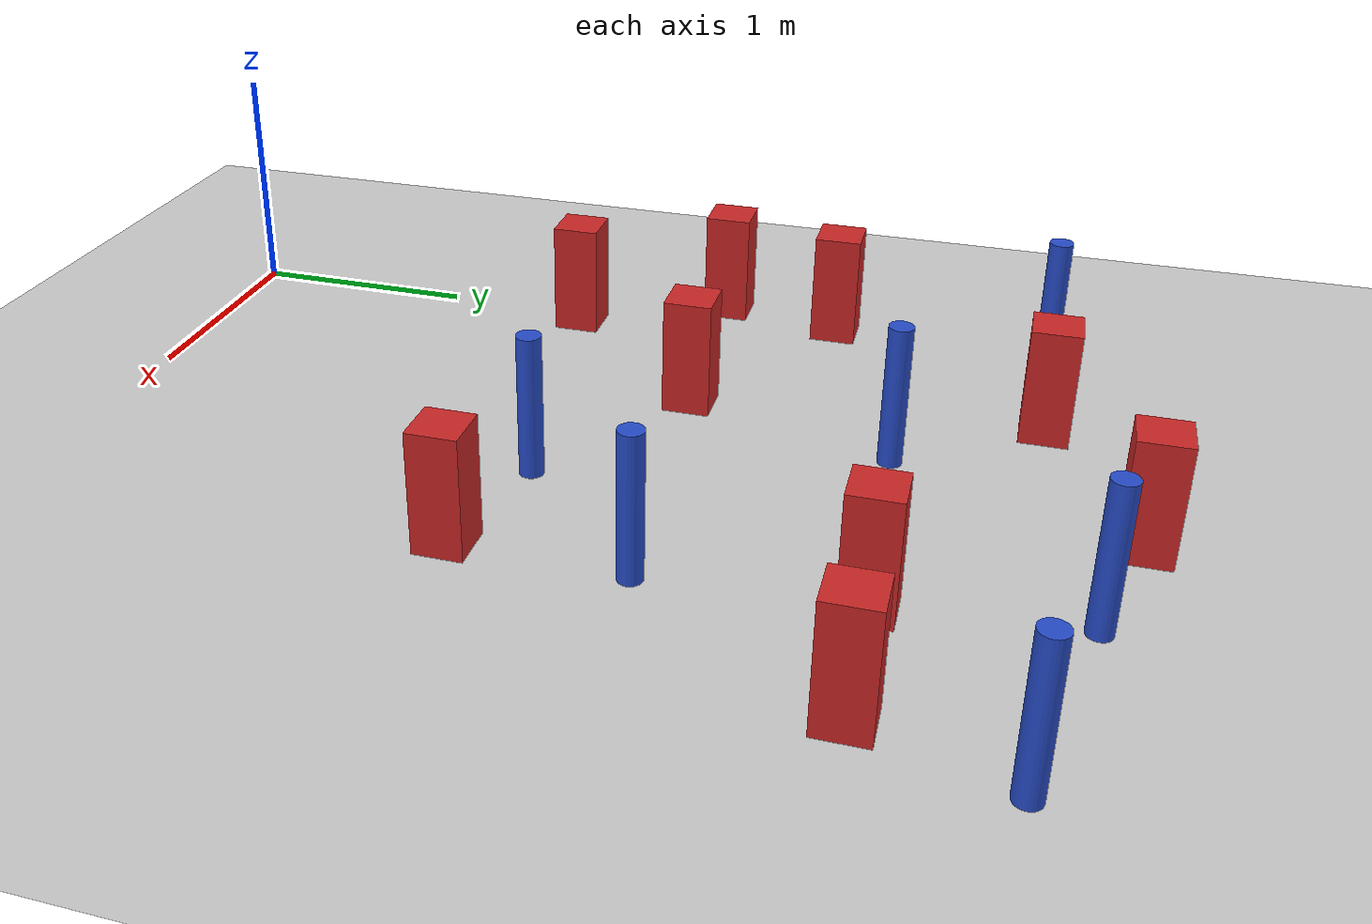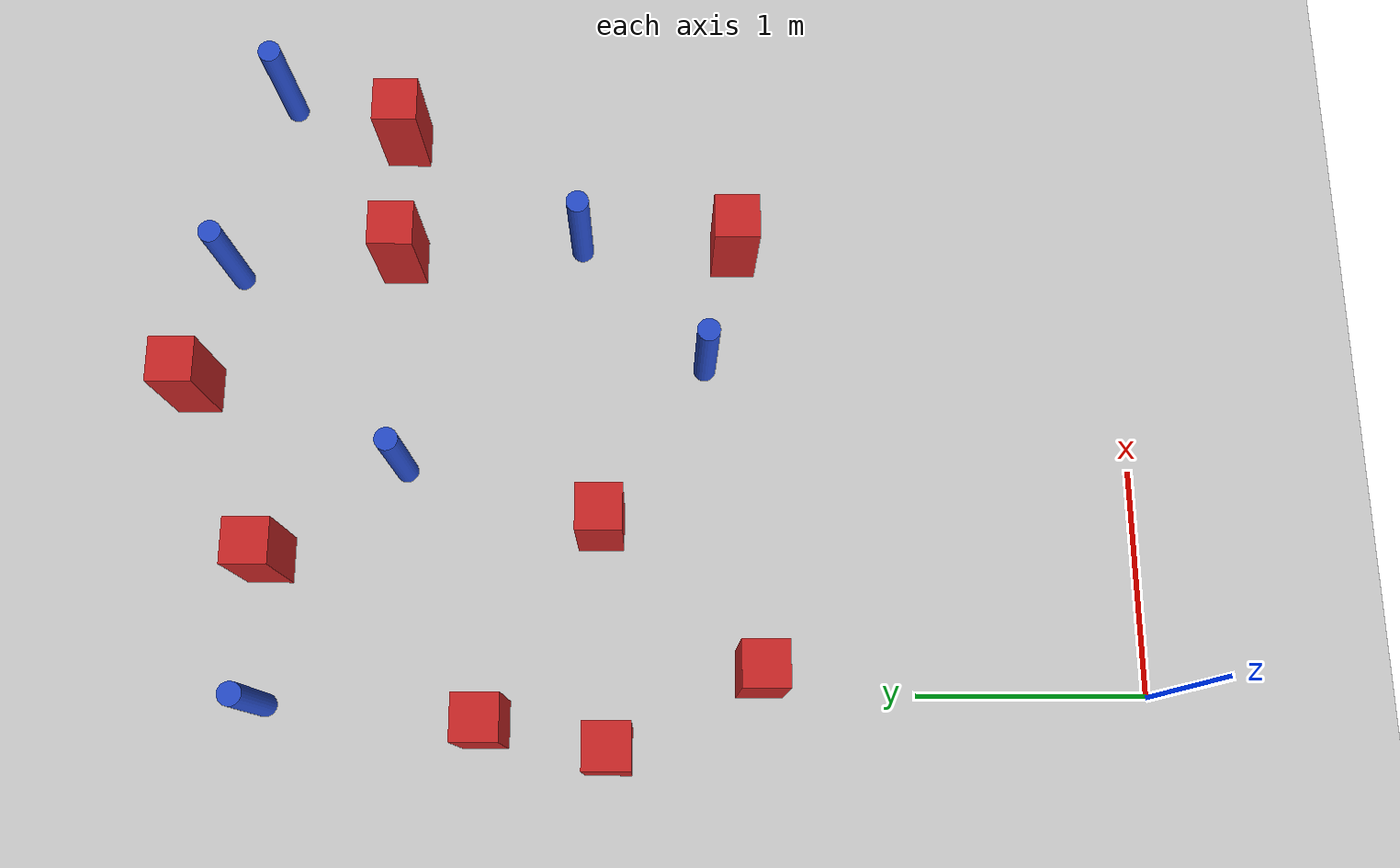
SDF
<sdf version="1.6">
 <world name="default">
  <model name="ground_plane">
   <static>1</static>
   <link name="link">
    <collision name="collision">
     <geometry><plane><normal>0 0 1</normal><size>100 100</size></plane></geometry>
     <surface><friction><ode><mu>100</mu><mu2>50</mu2></ode></friction></surface>
    </collision>
    <visual name="visual">
     <cast_shadows>0</cast_shadows>
     <geometry><plane><normal>0 0 1</normal><size>100 100</size></plane></geometry>
     <material>
      <ambient>1.0 1.0 1.0 1.0</ambient>
      <diffuse>0.8 0.8 0.8 1.0</diffuse>
      <specular>0.01 0.01 0.01 1.000000</specular>
     </material>
    </visual>
   </link>
  </model>
  <model name="pole_obstacle0">
   <static>true</static>
   <pose>2.04700699149 2.47416205247 2.88873142074e-08 -9.9053669043e-09 4.60219948975e-07 -1.2096599497e-07</pose>
   <link name="link">
    <pose>0 0 0.3 0 -0 0</pose>
    <inertial>
     <mass>1</mass>
     <inertia><ixx>0.145833</ixx><ixy>0</ixy><ixz>0</ixz><iyy>0.145833</iyy><iyz>0</iyz><izz>0.125</izz></inertia>
    </inertial>
    <collision name="collision">
     <geometry><cylinder><radius>0.05</radius><length>.6</length></cylinder></geometry>
    </collision>
    <visual name="visual">
     <geometry><cylinder><radius>0.05</radius><length>.6</length></cylinder></geometry>
     <material>
      <script><name>Gazebo/Blue</name><uri>file://media/materials/scripts/gazebo.material</uri></script>
     </material>
    </visual>
   </link>
  </model>
  <model name="square_post_obstacle2">
   <static>true</static>
   <pose>1.36068984229 4.20448335055 8.22691968438e-08 7.2212513382e-06 -7.54495500217e-07 2.29674213826e-05</pose>
   <link name="link">
    <pose>0 0 0.25 0 -0 0</pose>
    <inertial>
     <mass>100</mass>
     <inertia>
      <ixx>0.166667</ixx>
      <ixy>0</ixy>
      <ixz>0</ixz>
      <iyy>0.166667</iyy>
      <iyz>0</iyz>
      <izz>0.166667</izz>
     </inertia>
    </inertial>
    <collision name="collision"><geometry><box><size>.2 .2 .5</size></box></geometry></collision>
    <visual name="visual">
     <geometry><box><size>.2 .2 .5</size></box></geometry>
     <material>
      <script><name>Gazebo/Red</name><uri>file://media/materials/scripts/gazebo.material</uri></script>
     </material>
    </visual>
   </link>
  </model>
  <model name="square_post_obstacle18">
   <static>true</static>
   <pose>1.98810374156 3.29738425178 8.22691968438e-08 7.2212513382e-06 -7.54495500217e-07 2.29674213826e-05</pose>
   <link name="link">
    <pose>0 0 0.25 0 -0 0</pose>
    <inertial>
     <mass>100</mass>
     <inertia>
      <ixx>0.166667</ixx>
      <ixy>0</ixy>
      <ixz>0</ixz>
      <iyy>0.166667</iyy>
      <iyz>0</iyz>
      <izz>0.166667</izz>
     </inertia>
    </inertial>
    <collision name="collision"><geometry><box><size>.2 .2 .5</size></box></geometry></collision>
    <visual name="visual">
     <geometry><box><size>.2 .2 .5</size></box></geometry>
     <material>
      <script><name>Gazebo/Red</name><uri>file://media/materials/scripts/gazebo.material</uri></script>
     </material>
    </visual>
   </link>
  </model>
  <model name="pole_obstacle29">
   <static>true</static>
   <pose>2.76001645663 3.85796387029 2.88873142074e-08 -9.90536690232e-09 4.6021994898e-07 -1.20965994968e-07</pose>
   <link name="link">
    <pose>0 0 0.3 0 -0 0</pose>
    <inertial>
     <mass>1</mass>
     <inertia><ixx>0.145833</ixx><ixy>0</ixy><ixz>0</ixz><iyy>0.145833</iyy><iyz>0</iyz><izz>0.125</izz></inertia>
    </inertial>
    <collision name="collision">
     <geometry><cylinder><radius>0.05</radius><length>.6</length></cylinder></geometry>
    </collision>
    <visual name="visual">
     <geometry><cylinder><radius>0.05</radius><length>.6</length></cylinder></geometry>
     <material>
      <script><name>Gazebo/Blue</name><uri>file://media/materials/scripts/gazebo.material</uri></script>
     </material>
    </visual>
   </link>
  </model>
  <model name="square_post_obstacle26">
   <static>true</static>
   <pose>-0.128524485465 2.85255286279 8.22691968438e-08 7.22125133819e-06 -7.54495500217e-07 2.29674213826e-05</pose>
   <link name="link">
    <pose>0 0 0.25 0 -0 0</pose>
    <inertial>
     <mass>100</mass>
     <inertia>
      <ixx>0.166667</ixx>
      <ixy>0</ixy>
      <ixz>0</ixz>
      <iyy>0.166667</iyy>
      <iyz>0</iyz>
      <izz>0.166667</izz>
     </inertia>
    </inertial>
    <collision name="collision"><geometry><box><size>.2 .2 .5</size></box></geometry></collision>
    <visual name="visual">
     <geometry><box><size>.2 .2 .5</size></box></geometry>
     <material>
      <script><name>Gazebo/Red</name><uri>file://media/materials/scripts/gazebo.material</uri></script>
     </material>
    </visual>
   </link>
  </model>
  <model name="pole_obstacle56">
   <static>true</static>
   <pose>-0.0502757166644 3.80982067164 2.88873142074e-08 -9.90536692535e-09 4.60219948925e-07 -1.2096599499e-07</pose>
   <link name="link">
    <pose>0 0 0.3 0 -0 0</pose>
    <inertial>
     <mass>1</mass>
     <inertia><ixx>0.145833</ixx><ixy>0</ixy><ixz>0</ixz><iyy>0.145833</iyy><iyz>0</iyz><izz>0.125</izz></inertia>
    </inertial>
    <collision name="collision">
     <geometry><cylinder><radius>0.05</radius><length>.6</length></cylinder></geometry>
    </collision>
    <visual name="visual">
     <geometry><cylinder><radius>0.05</radius><length>.6</length></cylinder></geometry>
     <material>
      <script><name>Gazebo/Blue</name><uri>file://media/materials/scripts/gazebo.material</uri></script>
     </material>
    </visual>
   </link>
  </model>
  <model name="square_post_obstacle77">
   <static>true</static>
   <pose>0.730202555262 2.36754736703 8.22691968438e-08 7.2212513382e-06 -7.54495500217e-07 2.29674213826e-05</pose>
   <link name="link">
    <pose>0 0 0.25 0 -0 0</pose>
    <inertial>
     <mass>100</mass>
     <inertia>
      <ixx>0.166667</ixx>
      <ixy>0</ixy>
      <ixz>0</ixz>
      <iyy>0.166667</iyy>
      <iyz>0</iyz>
      <izz>0.166667</izz>
     </inertia>
    </inertial>
    <collision name="collision"><geometry><box><size>.2 .2 .5</size></box></geometry></collision>
    <visual name="visual">
     <geometry><box><size>.2 .2 .5</size></box></geometry>
     <material>
      <script><name>Gazebo/Red</name><uri>file://media/materials/scripts/gazebo.material</uri></script>
     </material>
    </visual>
   </link>
  </model>
  <model name="square_post_obstacle119">
   <static>true</static>
   <pose>-0.238910838458 2.32340931517 8.22691968438e-08 7.2212513382e-06 -7.54495500217e-07 2.29674213826e-05</pose>
   <link name="link">
    <pose>0 0 0.25 0 -0 0</pose>
    <inertial>
     <mass>100</mass>
     <inertia>
      <ixx>0.166667</ixx>
      <ixy>0</ixy>
      <ixz>0</ixz>
      <iyy>0.166667</iyy>
      <iyz>0</iyz>
      <izz>0.166667</izz>
     </inertia>
    </inertial>
    <collision name="collision"><geometry><box><size>.2 .2 .5</size></box></geometry></collision>
    <visual name="visual">
     <geometry><box><size>.2 .2 .5</size></box></geometry>
     <material>
      <script><name>Gazebo/Red</name><uri>file://media/materials/scripts/gazebo.material</uri></script>
     </material>
    </visual>
   </link>
  </model>
  <model name="square_post_obstacle153">
   <static>true</static>
   <pose>0.581322403118 3.82574125524 8.22691968438e-08 7.2212513382e-06 -7.54495500217e-07 2.29674213826e-05</pose>
   <link name="link">
    <pose>0 0 0.25 0 -0 0</pose>
    <inertial>
     <mass>100</mass>
     <inertia>
      <ixx>0.166667</ixx>
      <ixy>0</ixy>
      <ixz>0</ixz>
      <iyy>0.166667</iyy>
      <iyz>0</iyz>
      <izz>0.166667</izz>
     </inertia>
    </inertial>
    <collision name="collision"><geometry><box><size>.2 .2 .5</size></box></geometry></collision>
    <visual name="visual">
     <geometry><box><size>.2 .2 .5</size></box></geometry>
     <material>
      <script><name>Gazebo/Red</name><uri>file://media/materials/scripts/gazebo.material</uri></script>
     </material>
    </visual>
   </link>
  </model>
  <model name="pole_obstacle164">
   <static>true</static>
   <pose>0.987345101135 3.2458697432 2.88873142074e-08 -9.90536689802e-09 4.6021994899e-07 -1.2096599496e-07</pose>
   <link name="link">
    <pose>0 0 0.3 0 -0 0</pose>
    <inertial>
     <mass>1</mass>
     <inertia><ixx>0.145833</ixx><ixy>0</ixy><ixz>0</ixz><iyy>0.145833</iyy><iyz>0</iyz><izz>0.125</izz></inertia>
    </inertial>
    <collision name="collision">
     <geometry><cylinder><radius>0.05</radius><length>.6</length></cylinder></geometry>
    </collision>
    <visual name="visual">
     <geometry><cylinder><radius>0.05</radius><length>.6</length></cylinder></geometry>
     <material>
      <script><name>Gazebo/Blue</name><uri>file://media/materials/scripts/gazebo.material</uri></script>
     </material>
    </visual>
   </link>
  </model>
  <model name="square_post_obstacle162">
   <static>true</static>
   <pose>0.089637728485 1.67991281268 8.22691968438e-08 7.2212513382e-06 -7.54495500217e-07 2.29674213826e-05</pose>
   <link name="link">
    <pose>0 0 0.25 0 -0 0</pose>
    <inertial>
     <mass>100</mass>
     <inertia>
      <ixx>0.166667</ixx>
      <ixy>0</ixy>
      <ixz>0</ixz>
      <iyy>0.166667</iyy>
      <iyz>0</iyz>
      <izz>0.166667</izz>
     </inertia>
    </inertial>
    <collision name="collision"><geometry><box><size>.2 .2 .5</size></box></geometry></collision>
    <visual name="visual">
     <geometry><box><size>.2 .2 .5</size></box></geometry>
     <material>
      <script><name>Gazebo/Red</name><uri>file://media/materials/scripts/gazebo.material</uri></script>
     </material>
    </visual>
   </link>
  </model>
  <model name="square_post_obstacle164">
   <static>true</static>
   <pose>2.02719836851 1.77685157642 8.22691968438e-08 7.2212513382e-06 -7.54495500217e-07 2.29674213826e-05</pose>
   <link name="link">
    <pose>0 0 0.25 0 -0 0</pose>
    <inertial>
     <mass>100</mass>
     <inertia>
      <ixx>0.166667</ixx>
      <ixy>0</ixy>
      <ixz>0</ixz>
      <iyy>0.166667</iyy>
      <iyz>0</iyz>
      <izz>0.166667</izz>
     </inertia>
    </inertial>
    <collision name="collision"><geometry><box><size>.2 .2 .5</size></box></geometry></collision>
    <visual name="visual">
     <geometry><box><size>.2 .2 .5</size></box></geometry>
     <material>
      <script><name>Gazebo/Red</name><uri>file://media/materials/scripts/gazebo.material</uri></script>
     </material>
    </visual>
   </link>
  </model>
  <model name="square_post_obstacle167">
   <static>true</static>
   <pose>2.58091779884 3.30718218412 8.22691968438e-08 7.2212513382e-06 -7.54495500217e-07 2.29674213826e-05</pose>
   <link name="link">
    <pose>0 0 0.25 0 -0 0</pose>
    <inertial>
     <mass>100</mass>
     <inertia>
      <ixx>0.166667</ixx>
      <ixy>0</ixy>
      <ixz>0</ixz>
      <iyy>0.166667</iyy>
      <iyz>0</iyz>
      <izz>0.166667</izz>
     </inertia>
    </inertial>
    <collision name="collision"><geometry><box><size>.2 .2 .5</size></box></geometry></collision>
    <visual name="visual">
     <geometry><box><size>.2 .2 .5</size></box></geometry>
     <material>
      <script><name>Gazebo/Red</name><uri>file://media/materials/scripts/gazebo.material</uri></script>
     </material>
    </visual>
   </link>
  </model>
  <model name="pole_obstacle173">
   <static>true</static>
   <pose>1.4677457407 1.90778319511 2.88873142074e-08 -9.90536689672e-09 4.60219948993e-07 -1.20965994959e-07</pose>
   <link name="link">
    <pose>0 0 0.3 0 -0 0</pose>
    <inertial>
     <mass>1</mass>
     <inertia><ixx>0.145833</ixx><ixy>0</ixy><ixz>0</ixz><iyy>0.145833</iyy><iyz>0</iyz><izz>0.125</izz></inertia>
    </inertial>
    <collision name="collision">
     <geometry><cylinder><radius>0.05</radius><length>.6</length></cylinder></geometry>
    </collision>
    <visual name="visual">
     <geometry><cylinder><radius>0.05</radius><length>.6</length></cylinder></geometry>
     <material>
      <script><name>Gazebo/Blue</name><uri>file://media/materials/scripts/gazebo.material</uri></script>
     </material>
    </visual>
   </link>
  </model>
  <model name="pole_obstacle236">
   <static>true</static>
   <pose>1.90174000913 4.05189002041 2.88873142074e-08 -9.90536689786e-09 4.6021994899e-07 -1.2096599496e-07</pose>
   <link name="link">
    <pose>0 0 0.3 0 -0 0</pose>
    <inertial>
     <mass>1</mass>
     <inertia><ixx>0.145833</ixx><ixy>0</ixy><ixz>0</ixz><iyy>0.145833</iyy><iyz>0</iyz><izz>0.125</izz></inertia>
    </inertial>
    <collision name="collision">
     <geometry><cylinder><radius>0.05</radius><length>.6</length></cylinder></geometry>
    </collision>
    <visual name="visual">
     <geometry><cylinder><radius>0.05</radius><length>.6</length></cylinder></geometry>
     <material>
      <script><name>Gazebo/Blue</name><uri>file://media/materials/scripts/gazebo.material</uri></script>
     </material>
    </visual>
   </link>
  </model>
 </world>
</sdf>
